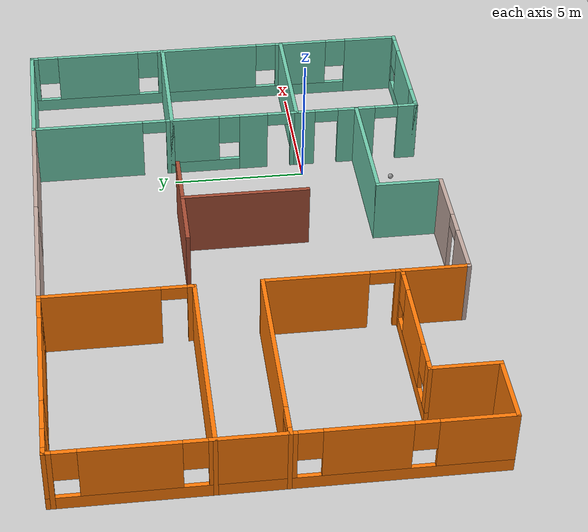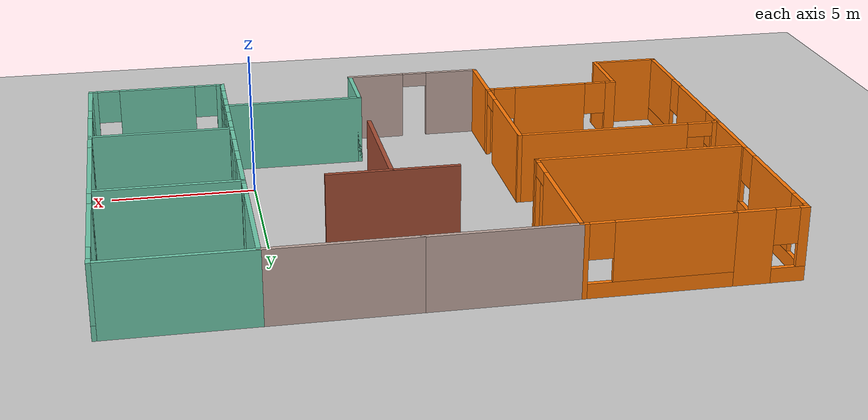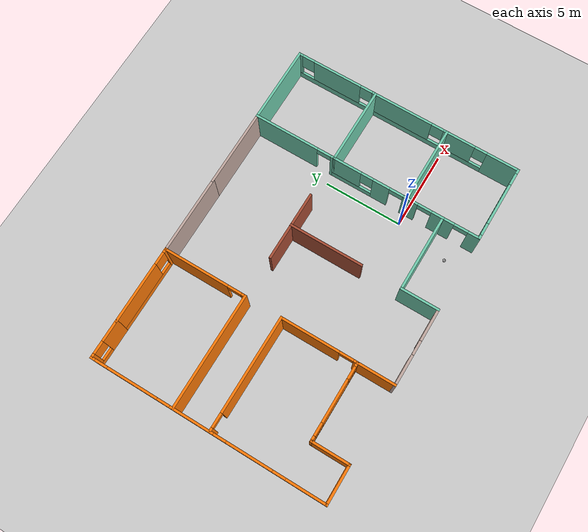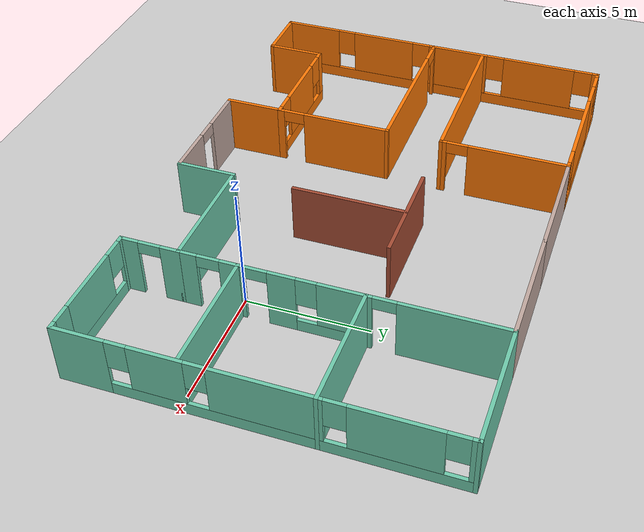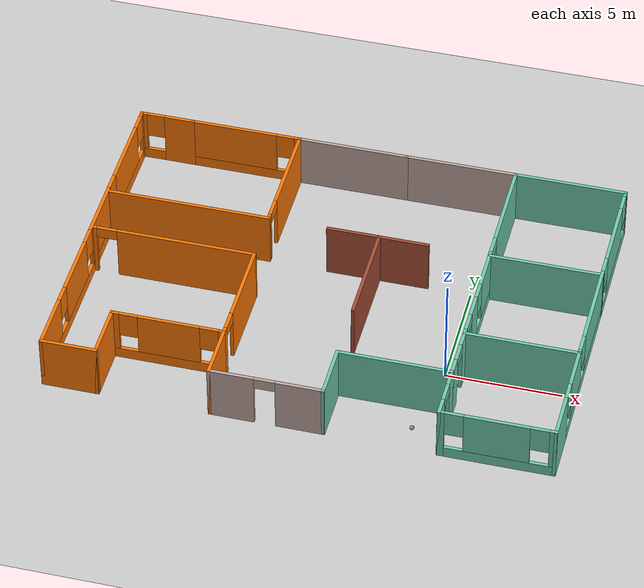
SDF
<sdf version="1.7">
 <world name="default">
  <model name="ground_plane">
   <static>1</static>
   <link name="link">
    <collision name="collision">
     <geometry><plane><normal>0 0 1</normal><size>100 100</size></plane></geometry>
     <surface>
      <contact><collide_bitmask>65535</collide_bitmask></contact>
      <friction><ode><mu>100</mu><mu2>50</mu2></ode></friction>
     </surface>
    </collision>
    <visual name="visual">
     <cast_shadows>0</cast_shadows>
     <geometry><plane><normal>0 0 1</normal><size>100 100</size></plane></geometry>
     <material>
      <script><uri>file://media/materials/scripts/gazebo.material</uri><name>Gazebo/Grey</name></script>
     </material>
    </visual>
   </link>
  </model>
  <model name="World_1">
   <pose>-5.29578 2.9031 0 0 -0 0</pose>
   <link name="Wall_10">
    <pose>6.025 -3.9 0 0 -0 1.5708</pose>
    <visual name="Wall_10_Visual_0">
     <pose>-0.849577 0 1.25 0 -0 0</pose>
     <geometry><box><size>0.800846 0.15 2.5</size></box></geometry>
     <material>
      <script><uri>file://media/materials/scripts/gazebo.material</uri><name>Gazebo/Grey</name></script>
      <ambient>0.435294 0.796078 0.67451 1</ambient>
     </material>
     <meta><layer>0</layer></meta>
    </visual>
    <collision name="Wall_10_Collision_0">
     <geometry><box><size>0.800846 0.15 2.5</size></box></geometry>
     <pose>-0.849577 0 1.25 0 -0 0</pose>
    </collision>
    <visual name="Wall_10_Visual_1">
     <pose>0.850423 0 1.25 0 -0 0</pose>
     <geometry><box><size>0.799154 0.15 2.5</size></box></geometry>
     <material>
      <script><uri>file://media/materials/scripts/gazebo.material</uri><name>Gazebo/Grey</name></script>
      <ambient>0.435294 0.796078 0.67451 1</ambient>
     </material>
     <meta><layer>0</layer></meta>
    </visual>
    <collision name="Wall_10_Collision_1">
     <geometry><box><size>0.799154 0.15 2.5</size></box></geometry>
     <pose>0.850423 0 1.25 0 -0 0</pose>
    </collision>
    <visual name="Wall_10_Visual_2">
     <pose>0.000846 0 2.25 0 -0 0</pose>
     <geometry><box><size>0.9 0.15 0.5</size></box></geometry>
     <material>
      <script><uri>file://media/materials/scripts/gazebo.material</uri><name>Gazebo/Grey</name></script>
      <ambient>0.435294 0.796078 0.67451 1</ambient>
     </material>
     <meta><layer>0</layer></meta>
    </visual>
    <collision name="Wall_10_Collision_2">
     <geometry><box><size>0.9 0.15 0.5</size></box></geometry>
     <pose>0.000846 0 2.25 0 -0 0</pose>
    </collision>
   </link>
   <link name="Wall_11">
    <collision name="Wall_11_Collision">
     <geometry><box><size>5 0.15 2.5</size></box></geometry>
     <pose>0 0 1.25 0 -0 0</pose>
    </collision>
    <visual name="Wall_11_Visual">
     <pose>0 0 1.25 0 -0 0</pose>
     <geometry><box><size>5 0.15 2.5</size></box></geometry>
     <material>
      <script><uri>file://media/materials/scripts/gazebo.material</uri><name>Gazebo/Grey</name></script>
      <ambient>0.435294 0.796078 0.67451 1</ambient>
     </material>
     <meta><layer>0</layer></meta>
    </visual>
    <pose>8.45 -2.725 0 0 -0 0</pose>
   </link>
   <link name="Wall_13">
    <pose>6.025 -0.3 0 0 -0 1.5708</pose>
    <visual name="Wall_13_Visual_0">
     <pose>-2.34458 0 1.25 0 -0 0</pose>
     <geometry><box><size>0.310846 0.15 2.5</size></box></geometry>
     <material>
      <script><uri>file://media/materials/scripts/gazebo.material</uri><name>Gazebo/Grey</name></script>
      <ambient>0.435294 0.796078 0.67451 1</ambient>
     </material>
     <meta><layer>0</layer></meta>
    </visual>
    <collision name="Wall_13_Collision_0">
     <geometry><box><size>0.310846 0.15 2.5</size></box></geometry>
     <pose>-2.34458 0 1.25 0 -0 0</pose>
    </collision>
    <visual name="Wall_13_Visual_1">
     <pose>-0.744154 0 1.25 0 -0 0</pose>
     <geometry><box><size>1.09 0.15 2.5</size></box></geometry>
     <material>
      <script><uri>file://media/materials/scripts/gazebo.material</uri><name>Gazebo/Grey</name></script>
      <ambient>0.435294 0.796078 0.67451 1</ambient>
     </material>
     <meta><layer>0</layer></meta>
    </visual>
    <collision name="Wall_13_Collision_1">
     <geometry><box><size>1.09 0.15 2.5</size></box></geometry>
     <pose>-0.744154 0 1.25 0 -0 0</pose>
    </collision>
    <visual name="Wall_13_Visual_2">
     <pose>1.15042 0 0.25 0 -0 0</pose>
     <geometry><box><size>2.69915 0.15 0.5</size></box></geometry>
     <material>
      <script><uri>file://media/materials/scripts/gazebo.material</uri><name>Gazebo/Grey</name></script>
      <ambient>0.435294 0.796078 0.67451 1</ambient>
     </material>
     <meta><layer>0</layer></meta>
    </visual>
    <collision name="Wall_13_Collision_2">
     <geometry><box><size>2.69915 0.15 0.5</size></box></geometry>
     <pose>1.15042 0 0.25 0 -0 0</pose>
    </collision>
    <visual name="Wall_13_Visual_3">
     <pose>1.55042 0 1.5 0 -0 0</pose>
     <geometry><box><size>1.89915 0.15 2</size></box></geometry>
     <material>
      <script><uri>file://media/materials/scripts/gazebo.material</uri><name>Gazebo/Grey</name></script>
      <ambient>0.435294 0.796078 0.67451 1</ambient>
     </material>
     <meta><layer>0</layer></meta>
    </visual>
    <collision name="Wall_13_Collision_3">
     <geometry><box><size>1.89915 0.15 2</size></box></geometry>
     <pose>1.55042 0 1.5 0 -0 0</pose>
    </collision>
    <visual name="Wall_13_Visual_4">
     <pose>0.200846 0 1.9 0 -0 0</pose>
     <geometry><box><size>0.8 0.15 1.2</size></box></geometry>
     <material>
      <script><uri>file://media/materials/scripts/gazebo.material</uri><name>Gazebo/Grey</name></script>
      <ambient>0.435294 0.796078 0.67451 1</ambient>
     </material>
     <meta><layer>0</layer></meta>
    </visual>
    <collision name="Wall_13_Collision_4">
     <geometry><box><size>0.8 0.15 1.2</size></box></geometry>
     <pose>0.200846 0 1.9 0 -0 0</pose>
    </collision>
    <visual name="Wall_13_Visual_5">
     <pose>-1.73915 0 2.25 0 -0 0</pose>
     <geometry><box><size>0.9 0.15 0.5</size></box></geometry>
     <material>
      <script><uri>file://media/materials/scripts/gazebo.material</uri><name>Gazebo/Grey</name></script>
      <ambient>0.435294 0.796078 0.67451 1</ambient>
     </material>
     <meta><layer>0</layer></meta>
    </visual>
    <collision name="Wall_13_Collision_5">
     <geometry><box><size>0.9 0.15 0.5</size></box></geometry>
     <pose>-1.73915 0 2.25 0 -0 0</pose>
    </collision>
   </link>
   <link name="Wall_14">
    <collision name="Wall_14_Collision">
     <geometry><box><size>5 0.15 2.5</size></box></geometry>
     <pose>0 0 1.25 0 -0 0</pose>
    </collision>
    <visual name="Wall_14_Visual">
     <pose>0 0 1.25 0 -0 0</pose>
     <geometry><box><size>5 0.15 2.5</size></box></geometry>
     <material>
      <script><uri>file://media/materials/scripts/gazebo.material</uri><name>Gazebo/Grey</name></script>
      <ambient>0.435294 0.796078 0.67451 1</ambient>
     </material>
     <meta><layer>0</layer></meta>
    </visual>
    <pose>8.45 2.125 0 0 -0 0</pose>
   </link>
   <link name="Wall_16">
    <collision name="Wall_16_Collision">
     <geometry><box><size>5 0.15 2.5</size></box></geometry>
     <pose>0 0 1.25 0 -0 0</pose>
    </collision>
    <visual name="Wall_16_Visual">
     <pose>0 0 1.25 0 -0 0</pose>
     <geometry><box><size>5 0.15 2.5</size></box></geometry>
     <material>
      <script><uri>file://media/materials/scripts/gazebo.material</uri><name>Gazebo/Grey</name></script>
      <ambient>0.435294 0.796078 0.67451 1</ambient>
     </material>
     <meta><layer>0</layer></meta>
    </visual>
    <pose>8.45 7.425 0 0 -0 3.14159</pose>
   </link>
   <link name="Wall_17">
    <pose>6.025 4.775 0 0 0 -1.5708</pose>
    <visual name="Wall_17_Visual_0">
     <pose>-0.605423 0 1.25 0 -0 0</pose>
     <geometry><box><size>4.23915 0.15 2.5</size></box></geometry>
     <material>
      <script><uri>file://media/materials/scripts/gazebo.material</uri><name>Gazebo/Grey</name></script>
      <ambient>0.435294 0.796078 0.67451 1</ambient>
     </material>
     <meta><layer>0</layer></meta>
    </visual>
    <collision name="Wall_17_Collision_0">
     <geometry><box><size>4.23915 0.15 2.5</size></box></geometry>
     <pose>-0.605423 0 1.25 0 -0 0</pose>
    </collision>
    <visual name="Wall_17_Visual_1">
     <pose>2.56958 0 1.25 0 -0 0</pose>
     <geometry><box><size>0.310846 0.15 2.5</size></box></geometry>
     <material>
      <script><uri>file://media/materials/scripts/gazebo.material</uri><name>Gazebo/Grey</name></script>
      <ambient>0.435294 0.796078 0.67451 1</ambient>
     </material>
     <meta><layer>0</layer></meta>
    </visual>
    <collision name="Wall_17_Collision_1">
     <geometry><box><size>0.310846 0.15 2.5</size></box></geometry>
     <pose>2.56958 0 1.25 0 -0 0</pose>
    </collision>
    <visual name="Wall_17_Visual_2">
     <pose>1.96415 0 2.25 0 -0 0</pose>
     <geometry><box><size>0.9 0.15 0.5</size></box></geometry>
     <material>
      <script><uri>file://media/materials/scripts/gazebo.material</uri><name>Gazebo/Grey</name></script>
      <ambient>0.435294 0.796078 0.67451 1</ambient>
     </material>
     <meta><layer>0</layer></meta>
    </visual>
    <collision name="Wall_17_Collision_2">
     <geometry><box><size>0.9 0.15 0.5</size></box></geometry>
     <pose>1.96415 0 2.25 0 -0 0</pose>
    </collision>
   </link>
   <link name="Wall_19">
    <collision name="Wall_19_Collision">
     <geometry><box><size>2.5 0.15 2.5</size></box></geometry>
     <pose>0 0 1.25 0 -0 0</pose>
    </collision>
    <visual name="Wall_19_Visual">
     <pose>0 0 1.25 0 -0 0</pose>
     <geometry><box><size>2.5 0.15 2.5</size></box></geometry>
     <material>
      <script><uri>file://media/materials/scripts/gazebo.material</uri><name>Gazebo/Grey</name></script>
      <ambient>0.996078 0.47451 0.0196078 1</ambient>
     </material>
     <meta><layer>0</layer></meta>
    </visual>
    <pose>-3.675 -6.25 0 0 -0 1.5708</pose>
   </link>
   <link name="Wall_2">
    <pose>-1.25 -7.425 0 0 -0 0</pose>
    <visual name="Wall_2_Visual_0">
     <pose>-1.5042 0 1.25 0 -0 0</pose>
     <geometry><box><size>1.99161 0.15 2.5</size></box></geometry>
     <material>
      <script><uri>file://media/materials/scripts/gazebo.material</uri><name>Gazebo/Grey</name></script>
      <ambient>0.760784 0.662745 0.627451 1</ambient>
     </material>
     <meta><layer>0</layer></meta>
    </visual>
    <collision name="Wall_2_Collision_0">
     <geometry><box><size>1.99161 0.15 2.5</size></box></geometry>
     <pose>-1.5042 0 1.25 0 -0 0</pose>
    </collision>
    <visual name="Wall_2_Visual_1">
     <pose>1.4458 0 1.25 0 -0 0</pose>
     <geometry><box><size>2.10839 0.15 2.5</size></box></geometry>
     <material>
      <script><uri>file://media/materials/scripts/gazebo.material</uri><name>Gazebo/Grey</name></script>
      <ambient>0.760784 0.662745 0.627451 1</ambient>
     </material>
     <meta><layer>0</layer></meta>
    </visual>
    <collision name="Wall_2_Collision_1">
     <geometry><box><size>2.10839 0.15 2.5</size></box></geometry>
     <pose>1.4458 0 1.25 0 -0 0</pose>
    </collision>
    <visual name="Wall_2_Visual_2">
     <pose>-0.058393 0 2.25 0 -0 0</pose>
     <geometry><box><size>0.9 0.15 0.5</size></box></geometry>
     <material>
      <script><uri>file://media/materials/scripts/gazebo.material</uri><name>Gazebo/Grey</name></script>
      <ambient>0.760784 0.662745 0.627451 1</ambient>
     </material>
     <meta><layer>0</layer></meta>
    </visual>
    <collision name="Wall_2_Collision_2">
     <geometry><box><size>0.9 0.15 0.5</size></box></geometry>
     <pose>-0.058393 0 2.25 0 -0 0</pose>
    </collision>
   </link>
   <link name="Wall_21">
    <pose>-6.1 -5.075 0 0 -0 3.14159</pose>
    <visual name="Wall_21_Visual_0">
     <pose>-2.34529 0 1.25 0 -0 0</pose>
     <geometry><box><size>0.309417 0.15 2.5</size></box></geometry>
     <material>
      <script><uri>file://media/materials/scripts/gazebo.material</uri><name>Gazebo/Grey</name></script>
      <ambient>0.996078 0.47451 0.0196078 1</ambient>
     </material>
     <meta><layer>0</layer></meta>
    </visual>
    <collision name="Wall_21_Collision_0">
     <geometry><box><size>0.309417 0.15 2.5</size></box></geometry>
     <pose>-2.34529 0 1.25 0 -0 0</pose>
    </collision>
    <visual name="Wall_21_Visual_1">
     <pose>0.154709 0 0.25 0 -0 0</pose>
     <geometry><box><size>4.69058 0.15 0.5</size></box></geometry>
     <material>
      <script><uri>file://media/materials/scripts/gazebo.material</uri><name>Gazebo/Grey</name></script>
      <ambient>0.996078 0.47451 0.0196078 1</ambient>
     </material>
     <meta><layer>0</layer></meta>
    </visual>
    <collision name="Wall_21_Collision_1">
     <geometry><box><size>4.69058 0.15 0.5</size></box></geometry>
     <pose>0.154709 0 0.25 0 -0 0</pose>
    </collision>
    <visual name="Wall_21_Visual_2">
     <pose>-0.040702 0 1.5 0 -0 0</pose>
     <geometry><box><size>2.69976 0.15 2</size></box></geometry>
     <material>
      <script><uri>file://media/materials/scripts/gazebo.material</uri><name>Gazebo/Grey</name></script>
      <ambient>0.996078 0.47451 0.0196078 1</ambient>
     </material>
     <meta><layer>0</layer></meta>
    </visual>
    <collision name="Wall_21_Collision_2">
     <geometry><box><size>2.69976 0.15 2</size></box></geometry>
     <pose>-0.040702 0 1.5 0 -0 0</pose>
    </collision>
    <visual name="Wall_21_Visual_3">
     <pose>2.30459 0 1.5 0 -0 0</pose>
     <geometry><box><size>0.390821 0.15 2</size></box></geometry>
     <material>
      <script><uri>file://media/materials/scripts/gazebo.material</uri><name>Gazebo/Grey</name></script>
      <ambient>0.996078 0.47451 0.0196078 1</ambient>
     </material>
     <meta><layer>0</layer></meta>
    </visual>
    <collision name="Wall_21_Collision_3">
     <geometry><box><size>0.390821 0.15 2</size></box></geometry>
     <pose>2.30459 0 1.5 0 -0 0</pose>
    </collision>
    <visual name="Wall_21_Visual_4">
     <pose>-1.79058 0 1.9 0 -0 0</pose>
     <geometry><box><size>0.8 0.15 1.2</size></box></geometry>
     <material>
      <script><uri>file://media/materials/scripts/gazebo.material</uri><name>Gazebo/Grey</name></script>
      <ambient>0.996078 0.47451 0.0196078 1</ambient>
     </material>
     <meta><layer>0</layer></meta>
    </visual>
    <collision name="Wall_21_Collision_4">
     <geometry><box><size>0.8 0.15 1.2</size></box></geometry>
     <pose>-1.79058 0 1.9 0 -0 0</pose>
    </collision>
    <visual name="Wall_21_Visual_5">
     <pose>1.70918 0 1.9 0 -0 0</pose>
     <geometry><box><size>0.8 0.15 1.2</size></box></geometry>
     <material>
      <script><uri>file://media/materials/scripts/gazebo.material</uri><name>Gazebo/Grey</name></script>
      <ambient>0.996078 0.47451 0.0196078 1</ambient>
     </material>
     <meta><layer>0</layer></meta>
    </visual>
    <collision name="Wall_21_Collision_5">
     <geometry><box><size>0.8 0.15 1.2</size></box></geometry>
     <pose>1.70918 0 1.9 0 -0 0</pose>
    </collision>
   </link>
   <link name="Wall_3">
    <collision name="Wall_3_Collision">
     <geometry><box><size>2.5 0.15 2.5</size></box></geometry>
     <pose>0 0 1.25 0 -0 0</pose>
    </collision>
    <visual name="Wall_3_Visual">
     <pose>0 0 1.25 0 -0 0</pose>
     <geometry><box><size>2.5 0.15 2.5</size></box></geometry>
     <material>
      <script><uri>file://media/materials/scripts/gazebo.material</uri><name>Gazebo/Grey</name></script>
      <ambient>0.435294 0.796078 0.67451 1</ambient>
     </material>
     <meta><layer>0</layer></meta>
    </visual>
    <pose>1.175 -6.25 0 0 -0 1.5708</pose>
   </link>
   <link name="Wall_34">
    <collision name="Wall_34_Collision">
     <geometry><box><size>2.5 0.15 2.5</size></box></geometry>
     <pose>0 0 1.25 0 -0 0</pose>
    </collision>
    <visual name="Wall_34_Visual">
     <pose>0 0 1.25 0 -0 0</pose>
     <geometry><box><size>2.5 0.15 2.5</size></box></geometry>
     <material>
      <script><uri>file://media/materials/scripts/gazebo.material</uri><name>Gazebo/Grey</name></script>
      <ambient>0.996078 0.47451 0.0196078 1</ambient>
     </material>
     <meta><layer>0</layer></meta>
    </visual>
    <pose>-8.525 -6.25 0 0 0 -1.5708</pose>
   </link>
   <link name="Wall_38">
    <collision name="Wall_38_Collision">
     <geometry><box><size>5 0.15 2.5</size></box></geometry>
     <pose>0 0 1.25 0 -0 0</pose>
    </collision>
    <visual name="Wall_38_Visual">
     <pose>0 0 1.25 0 -0 0</pose>
     <geometry><box><size>5 0.15 2.5</size></box></geometry>
     <material>
      <script><uri>file://media/materials/scripts/gazebo.material</uri><name>Gazebo/Grey</name></script>
      <ambient>0.760784 0.662745 0.627451 1</ambient>
     </material>
     <meta><layer>0</layer></meta>
    </visual>
    <pose>3.6 7.425 0 0 -0 3.14159</pose>
   </link>
   <link name="Wall_39">
    <collision name="Wall_39_Collision">
     <geometry><box><size>5 0.15 2.5</size></box></geometry>
     <pose>0 0 1.25 0 -0 0</pose>
    </collision>
    <visual name="Wall_39_Visual">
     <pose>0 0 1.25 0 -0 0</pose>
     <geometry><box><size>5 0.15 2.5</size></box></geometry>
     <material>
      <script><uri>file://media/materials/scripts/gazebo.material</uri><name>Gazebo/Grey</name></script>
      <ambient>0.760784 0.662745 0.627451 1</ambient>
     </material>
     <meta><layer>0</layer></meta>
    </visual>
    <pose>-1.25 7.425 0 0 -0 3.14159</pose>
   </link>
   <link name="Wall_4">
    <collision name="Wall_4_Collision">
     <geometry><box><size>5 0.15 2.5</size></box></geometry>
     <pose>0 0 1.25 0 -0 0</pose>
    </collision>
    <visual name="Wall_4_Visual">
     <pose>0 0 1.25 0 -0 0</pose>
     <geometry><box><size>5 0.15 2.5</size></box></geometry>
     <material>
      <script><uri>file://media/materials/scripts/gazebo.material</uri><name>Gazebo/Grey</name></script>
      <ambient>0.435294 0.796078 0.67451 1</ambient>
     </material>
     <meta><layer>0</layer></meta>
    </visual>
    <pose>3.6 -5.075 0 0 -0 0</pose>
   </link>
   <link name="Wall_40">
    <pose>-6.1 7.425 0 0 -0 3.14159</pose>
    <visual name="Wall_40_Visual_0">
     <pose>-2.3458 0 1.25 0 -0 0</pose>
     <geometry><box><size>0.308393 0.15 2.5</size></box></geometry>
     <material>
      <script><uri>file://media/materials/scripts/gazebo.material</uri><name>Gazebo/Grey</name></script>
      <ambient>0.996078 0.47451 0.0196078 1</ambient>
     </material>
     <meta><layer>0</layer></meta>
    </visual>
    <collision name="Wall_40_Collision_0">
     <geometry><box><size>0.308393 0.15 2.5</size></box></geometry>
     <pose>-2.3458 0 1.25 0 -0 0</pose>
    </collision>
    <visual name="Wall_40_Visual_1">
     <pose>0.154197 0 0.25 0 -0 0</pose>
     <geometry><box><size>4.69161 0.15 0.5</size></box></geometry>
     <material>
      <script><uri>file://media/materials/scripts/gazebo.material</uri><name>Gazebo/Grey</name></script>
      <ambient>0.996078 0.47451 0.0196078 1</ambient>
     </material>
     <meta><layer>0</layer></meta>
    </visual>
    <collision name="Wall_40_Collision_1">
     <geometry><box><size>4.69161 0.15 0.5</size></box></geometry>
     <pose>0.154197 0 0.25 0 -0 0</pose>
    </collision>
    <visual name="Wall_40_Visual_2">
     <pose>0.554197 0 1.5 0 -0 0</pose>
     <geometry><box><size>3.89161 0.15 2</size></box></geometry>
     <material>
      <script><uri>file://media/materials/scripts/gazebo.material</uri><name>Gazebo/Grey</name></script>
      <ambient>0.996078 0.47451 0.0196078 1</ambient>
     </material>
     <meta><layer>0</layer></meta>
    </visual>
    <collision name="Wall_40_Collision_2">
     <geometry><box><size>3.89161 0.15 2</size></box></geometry>
     <pose>0.554197 0 1.5 0 -0 0</pose>
    </collision>
    <visual name="Wall_40_Visual_3">
     <pose>-1.79161 0 1.9 0 -0 0</pose>
     <geometry><box><size>0.8 0.15 1.2</size></box></geometry>
     <material>
      <script><uri>file://media/materials/scripts/gazebo.material</uri><name>Gazebo/Grey</name></script>
      <ambient>0.996078 0.47451 0.0196078 1</ambient>
     </material>
     <meta><layer>0</layer></meta>
    </visual>
    <collision name="Wall_40_Collision_3">
     <geometry><box><size>0.8 0.15 1.2</size></box></geometry>
     <pose>-1.79161 0 1.9 0 -0 0</pose>
    </collision>
   </link>
   <link name="Wall_43">
    <collision name="Wall_43_Collision">
     <geometry><box><size>2.5 0.15 2.5</size></box></geometry>
     <pose>0 0 1.25 0 -0 0</pose>
    </collision>
    <visual name="Wall_43_Visual">
     <pose>0 0 1.25 0 -0 0</pose>
     <geometry><box><size>2.5 0.15 2.5</size></box></geometry>
     <material>
      <script><uri>file://media/materials/scripts/gazebo.material</uri><name>Gazebo/Grey</name></script>
      <ambient>0.996078 0.47451 0.0196078 1</ambient>
     </material>
     <meta><layer>0</layer></meta>
    </visual>
    <pose>-9.7 -7.425 0 0 -0 3.14159</pose>
   </link>
   <link name="Wall_45">
    <pose>-9.7 7.425 0 0 -0 3.14159</pose>
    <visual name="Wall_45_Visual_0">
     <pose>-0.560804 0 1.25 0 -0 0</pose>
     <geometry><box><size>1.37839 0.15 2.5</size></box></geometry>
     <material>
      <script><uri>file://media/materials/scripts/gazebo.material</uri><name>Gazebo/Grey</name></script>
      <ambient>0.996078 0.47451 0.0196078 1</ambient>
     </material>
     <meta><layer>0</layer></meta>
    </visual>
    <collision name="Wall_45_Collision_0">
     <geometry><box><size>1.37839 0.15 2.5</size></box></geometry>
     <pose>-0.560804 0 1.25 0 -0 0</pose>
    </collision>
    <visual name="Wall_45_Visual_1">
     <pose>0.689196 0 0.25 0 -0 0</pose>
     <geometry><box><size>1.12161 0.15 0.5</size></box></geometry>
     <material>
      <script><uri>file://media/materials/scripts/gazebo.material</uri><name>Gazebo/Grey</name></script>
      <ambient>0.996078 0.47451 0.0196078 1</ambient>
     </material>
     <meta><layer>0</layer></meta>
    </visual>
    <collision name="Wall_45_Collision_1">
     <geometry><box><size>1.12161 0.15 0.5</size></box></geometry>
     <pose>0.689196 0 0.25 0 -0 0</pose>
    </collision>
    <visual name="Wall_45_Visual_2">
     <pose>1.0892 0 1.5 0 -0 0</pose>
     <geometry><box><size>0.321607 0.15 2</size></box></geometry>
     <material>
      <script><uri>file://media/materials/scripts/gazebo.material</uri><name>Gazebo/Grey</name></script>
      <ambient>0.996078 0.47451 0.0196078 1</ambient>
     </material>
     <meta><layer>0</layer></meta>
    </visual>
    <collision name="Wall_45_Collision_2">
     <geometry><box><size>0.321607 0.15 2</size></box></geometry>
     <pose>1.0892 0 1.5 0 -0 0</pose>
    </collision>
    <visual name="Wall_45_Visual_3">
     <pose>0.528393 0 1.9 0 -0 0</pose>
     <geometry><box><size>0.8 0.15 1.2</size></box></geometry>
     <material>
      <script><uri>file://media/materials/scripts/gazebo.material</uri><name>Gazebo/Grey</name></script>
      <ambient>0.996078 0.47451 0.0196078 1</ambient>
     </material>
     <meta><layer>0</layer></meta>
    </visual>
    <collision name="Wall_45_Collision_3">
     <geometry><box><size>0.8 0.15 1.2</size></box></geometry>
     <pose>0.528393 0 1.9 0 -0 0</pose>
    </collision>
   </link>
   <link name="Wall_46">
    <pose>-10.875 0 0 0 0 -1.5708</pose>
    <visual name="Wall_46_Visual_0">
     <pose>-7.34042 0 1.25 0 -0 0</pose>
     <geometry><box><size>0.319154 0.15 2.5</size></box></geometry>
     <material>
      <script><uri>file://media/materials/scripts/gazebo.material</uri><name>Gazebo/Grey</name></script>
      <ambient>0.996078 0.47451 0.0196078 1</ambient>
     </material>
     <meta><layer>0</layer></meta>
    </visual>
    <collision name="Wall_46_Collision_0">
     <geometry><box><size>0.319154 0.15 2.5</size></box></geometry>
     <pose>-7.34042 0 1.25 0 -0 0</pose>
    </collision>
    <visual name="Wall_46_Visual_1">
     <pose>0.159577 0 0.25 0 -0 0</pose>
     <geometry><box><size>14.6808 0.15 0.5</size></box></geometry>
     <material>
      <script><uri>file://media/materials/scripts/gazebo.material</uri><name>Gazebo/Grey</name></script>
      <ambient>0.996078 0.47451 0.0196078 1</ambient>
     </material>
     <meta><layer>0</layer></meta>
    </visual>
    <collision name="Wall_46_Collision_1">
     <geometry><box><size>14.6808 0.15 0.5</size></box></geometry>
     <pose>0.159577 0 0.25 0 -0 0</pose>
    </collision>
    <visual name="Wall_46_Visual_2">
     <pose>-4.75585 0 1.5 0 -0 0</pose>
     <geometry><box><size>3.25 0.15 2</size></box></geometry>
     <material>
      <script><uri>file://media/materials/scripts/gazebo.material</uri><name>Gazebo/Grey</name></script>
      <ambient>0.996078 0.47451 0.0196078 1</ambient>
     </material>
     <meta><layer>0</layer></meta>
    </visual>
    <collision name="Wall_46_Collision_2">
     <geometry><box><size>3.25 0.15 2</size></box></geometry>
     <pose>-4.75585 0 1.5 0 -0 0</pose>
    </collision>
    <visual name="Wall_46_Visual_3">
     <pose>-0.940846 0 1.5 0 -0 0</pose>
     <geometry><box><size>2.78 0.15 2</size></box></geometry>
     <material>
      <script><uri>file://media/materials/scripts/gazebo.material</uri><name>Gazebo/Grey</name></script>
      <ambient>0.996078 0.47451 0.0196078 1</ambient>
     </material>
     <meta><layer>0</layer></meta>
    </visual>
    <collision name="Wall_46_Collision_3">
     <geometry><box><size>2.78 0.15 2</size></box></geometry>
     <pose>-0.940846 0 1.5 0 -0 0</pose>
    </collision>
    <visual name="Wall_46_Visual_4">
     <pose>2.68915 0 1.5 0 -0 0</pose>
     <geometry><box><size>2.88 0.15 2</size></box></geometry>
     <material>
      <script><uri>file://media/materials/scripts/gazebo.material</uri><name>Gazebo/Grey</name></script>
      <ambient>0.996078 0.47451 0.0196078 1</ambient>
     </material>
     <meta><layer>0</layer></meta>
    </visual>
    <collision name="Wall_46_Collision_4">
     <geometry><box><size>2.88 0.15 2</size></box></geometry>
     <pose>2.68915 0 1.5 0 -0 0</pose>
    </collision>
    <visual name="Wall_46_Visual_5">
     <pose>6.21458 0 1.5 0 -0 0</pose>
     <geometry><box><size>2.57085 0.15 2</size></box></geometry>
     <material>
      <script><uri>file://media/materials/scripts/gazebo.material</uri><name>Gazebo/Grey</name></script>
      <ambient>0.996078 0.47451 0.0196078 1</ambient>
     </material>
     <meta><layer>0</layer></meta>
    </visual>
    <collision name="Wall_46_Collision_5">
     <geometry><box><size>2.57085 0.15 2</size></box></geometry>
     <pose>6.21458 0 1.5 0 -0 0</pose>
    </collision>
    <visual name="Wall_46_Visual_6">
     <pose>-6.78085 0 1.9 0 -0 0</pose>
     <geometry><box><size>0.8 0.15 1.2</size></box></geometry>
     <material>
      <script><uri>file://media/materials/scripts/gazebo.material</uri><name>Gazebo/Grey</name></script>
      <ambient>0.996078 0.47451 0.0196078 1</ambient>
     </material>
     <meta><layer>0</layer></meta>
    </visual>
    <collision name="Wall_46_Collision_6">
     <geometry><box><size>0.8 0.15 1.2</size></box></geometry>
     <pose>-6.78085 0 1.9 0 -0 0</pose>
    </collision>
    <visual name="Wall_46_Visual_7">
     <pose>-2.73085 0 1.9 0 -0 0</pose>
     <geometry><box><size>0.8 0.15 1.2</size></box></geometry>
     <material>
      <script><uri>file://media/materials/scripts/gazebo.material</uri><name>Gazebo/Grey</name></script>
      <ambient>0.996078 0.47451 0.0196078 1</ambient>
     </material>
     <meta><layer>0</layer></meta>
    </visual>
    <collision name="Wall_46_Collision_7">
     <geometry><box><size>0.8 0.15 1.2</size></box></geometry>
     <pose>-2.73085 0 1.9 0 -0 0</pose>
    </collision>
    <visual name="Wall_46_Visual_8">
     <pose>0.849154 0 1.9 0 -0 0</pose>
     <geometry><box><size>0.8 0.15 1.2</size></box></geometry>
     <material>
      <script><uri>file://media/materials/scripts/gazebo.material</uri><name>Gazebo/Grey</name></script>
      <ambient>0.996078 0.47451 0.0196078 1</ambient>
     </material>
     <meta><layer>0</layer></meta>
    </visual>
    <collision name="Wall_46_Collision_8">
     <geometry><box><size>0.8 0.15 1.2</size></box></geometry>
     <pose>0.849154 0 1.9 0 -0 0</pose>
    </collision>
    <visual name="Wall_46_Visual_9">
     <pose>4.52915 0 1.9 0 -0 0</pose>
     <geometry><box><size>0.8 0.15 1.2</size></box></geometry>
     <material>
      <script><uri>file://media/materials/scripts/gazebo.material</uri><name>Gazebo/Grey</name></script>
      <ambient>0.996078 0.47451 0.0196078 1</ambient>
     </material>
     <meta><layer>0</layer></meta>
    </visual>
    <collision name="Wall_46_Collision_9">
     <geometry><box><size>0.8 0.15 1.2</size></box></geometry>
     <pose>4.52915 0 1.9 0 -0 0</pose>
    </collision>
   </link>
   <link name="Wall_48">
    <pose>-3.675 -2.65 0 0 -0 1.5708</pose>
    <visual name="Wall_48_Visual_0">
     <pose>-2.34458 0 1.25 0 -0 0</pose>
     <geometry><box><size>0.310846 0.15 2.5</size></box></geometry>
     <material>
      <script><uri>file://media/materials/scripts/gazebo.material</uri><name>Gazebo/Grey</name></script>
      <ambient>0.996078 0.47451 0.0196078 1</ambient>
     </material>
     <meta><layer>0</layer></meta>
    </visual>
    <collision name="Wall_48_Collision_0">
     <geometry><box><size>0.310846 0.15 2.5</size></box></geometry>
     <pose>-2.34458 0 1.25 0 -0 0</pose>
    </collision>
    <visual name="Wall_48_Visual_1">
     <pose>0.605423 0 1.25 0 -0 0</pose>
     <geometry><box><size>3.78915 0.15 2.5</size></box></geometry>
     <material>
      <script><uri>file://media/materials/scripts/gazebo.material</uri><name>Gazebo/Grey</name></script>
      <ambient>0.996078 0.47451 0.0196078 1</ambient>
     </material>
     <meta><layer>0</layer></meta>
    </visual>
    <collision name="Wall_48_Collision_1">
     <geometry><box><size>3.78915 0.15 2.5</size></box></geometry>
     <pose>0.605423 0 1.25 0 -0 0</pose>
    </collision>
    <visual name="Wall_48_Visual_2">
     <pose>-1.73915 0 2.25 0 -0 0</pose>
     <geometry><box><size>0.9 0.15 0.5</size></box></geometry>
     <material>
      <script><uri>file://media/materials/scripts/gazebo.material</uri><name>Gazebo/Grey</name></script>
      <ambient>0.996078 0.47451 0.0196078 1</ambient>
     </material>
     <meta><layer>0</layer></meta>
    </visual>
    <collision name="Wall_48_Collision_2">
     <geometry><box><size>0.9 0.15 0.5</size></box></geometry>
     <pose>-1.73915 0 2.25 0 -0 0</pose>
    </collision>
   </link>
   <link name="Wall_5">
    <pose>6.025 -6.25 0 0 0 -1.5708</pose>
    <visual name="Wall_5_Visual_0">
     <pose>-0.845423 0 1.25 0 -0 0</pose>
     <geometry><box><size>0.809154 0.15 2.5</size></box></geometry>
     <material>
      <script><uri>file://media/materials/scripts/gazebo.material</uri><name>Gazebo/Grey</name></script>
      <ambient>0.435294 0.796078 0.67451 1</ambient>
     </material>
     <meta><layer>0</layer></meta>
    </visual>
    <collision name="Wall_5_Collision_0">
     <geometry><box><size>0.809154 0.15 2.5</size></box></geometry>
     <pose>-0.845423 0 1.25 0 -0 0</pose>
    </collision>
    <visual name="Wall_5_Visual_1">
     <pose>0.854577 0 1.25 0 -0 0</pose>
     <geometry><box><size>0.790846 0.15 2.5</size></box></geometry>
     <material>
      <script><uri>file://media/materials/scripts/gazebo.material</uri><name>Gazebo/Grey</name></script>
      <ambient>0.435294 0.796078 0.67451 1</ambient>
     </material>
     <meta><layer>0</layer></meta>
    </visual>
    <collision name="Wall_5_Collision_1">
     <geometry><box><size>0.790846 0.15 2.5</size></box></geometry>
     <pose>0.854577 0 1.25 0 -0 0</pose>
    </collision>
    <visual name="Wall_5_Visual_2">
     <pose>0.009154 0 2.25 0 -0 0</pose>
     <geometry><box><size>0.9 0.15 0.5</size></box></geometry>
     <material>
      <script><uri>file://media/materials/scripts/gazebo.material</uri><name>Gazebo/Grey</name></script>
      <ambient>0.435294 0.796078 0.67451 1</ambient>
     </material>
     <meta><layer>0</layer></meta>
    </visual>
    <collision name="Wall_5_Collision_2">
     <geometry><box><size>0.9 0.15 0.5</size></box></geometry>
     <pose>0.009154 0 2.25 0 -0 0</pose>
    </collision>
   </link>
   <link name="Wall_50">
    <pose>-7.275 -0.225 0 0 -0 3.14159</pose>
    <visual name="Wall_50_Visual_0">
     <pose>-0.605803 0 1.25 0 -0 0</pose>
     <geometry><box><size>6.13839 0.15 2.5</size></box></geometry>
     <material>
      <script><uri>file://media/materials/scripts/gazebo.material</uri><name>Gazebo/Grey</name></script>
      <ambient>0.996078 0.47451 0.0196078 1</ambient>
     </material>
     <meta><layer>0</layer></meta>
    </visual>
    <collision name="Wall_50_Collision_0">
     <geometry><box><size>6.13839 0.15 2.5</size></box></geometry>
     <pose>-0.605803 0 1.25 0 -0 0</pose>
    </collision>
    <visual name="Wall_50_Visual_1">
     <pose>3.5192 0 1.25 0 -0 0</pose>
     <geometry><box><size>0.311607 0.15 2.5</size></box></geometry>
     <material>
      <script><uri>file://media/materials/scripts/gazebo.material</uri><name>Gazebo/Grey</name></script>
      <ambient>0.996078 0.47451 0.0196078 1</ambient>
     </material>
     <meta><layer>0</layer></meta>
    </visual>
    <collision name="Wall_50_Collision_1">
     <geometry><box><size>0.311607 0.15 2.5</size></box></geometry>
     <pose>3.5192 0 1.25 0 -0 0</pose>
    </collision>
    <visual name="Wall_50_Visual_2">
     <pose>2.91339 0 2.25 0 -0 0</pose>
     <geometry><box><size>0.9 0.15 0.5</size></box></geometry>
     <material>
      <script><uri>file://media/materials/scripts/gazebo.material</uri><name>Gazebo/Grey</name></script>
      <ambient>0.996078 0.47451 0.0196078 1</ambient>
     </material>
     <meta><layer>0</layer></meta>
    </visual>
    <collision name="Wall_50_Collision_2">
     <geometry><box><size>0.9 0.15 0.5</size></box></geometry>
     <pose>2.91339 0 2.25 0 -0 0</pose>
    </collision>
   </link>
   <link name="Wall_53">
    <pose>-3.675 4.775 0 0 0 -1.5708</pose>
    <visual name="Wall_53_Visual_0">
     <pose>-0.610423 0 1.25 0 -0 0</pose>
     <geometry><box><size>4.22915 0.15 2.5</size></box></geometry>
     <material>
      <script><uri>file://media/materials/scripts/gazebo.material</uri><name>Gazebo/Grey</name></script>
      <ambient>0.996078 0.47451 0.0196078 1</ambient>
     </material>
     <meta><layer>0</layer></meta>
    </visual>
    <collision name="Wall_53_Collision_0">
     <geometry><box><size>4.22915 0.15 2.5</size></box></geometry>
     <pose>-0.610423 0 1.25 0 -0 0</pose>
    </collision>
    <visual name="Wall_53_Visual_1">
     <pose>2.56458 0 1.25 0 -0 0</pose>
     <geometry><box><size>0.320846 0.15 2.5</size></box></geometry>
     <material>
      <script><uri>file://media/materials/scripts/gazebo.material</uri><name>Gazebo/Grey</name></script>
      <ambient>0.996078 0.47451 0.0196078 1</ambient>
     </material>
     <meta><layer>0</layer></meta>
    </visual>
    <collision name="Wall_53_Collision_1">
     <geometry><box><size>0.320846 0.15 2.5</size></box></geometry>
     <pose>2.56458 0 1.25 0 -0 0</pose>
    </collision>
    <visual name="Wall_53_Visual_2">
     <pose>1.95415 0 2.25 0 -0 0</pose>
     <geometry><box><size>0.9 0.15 0.5</size></box></geometry>
     <material>
      <script><uri>file://media/materials/scripts/gazebo.material</uri><name>Gazebo/Grey</name></script>
      <ambient>0.996078 0.47451 0.0196078 1</ambient>
     </material>
     <meta><layer>0</layer></meta>
    </visual>
    <collision name="Wall_53_Collision_2">
     <geometry><box><size>0.9 0.15 0.5</size></box></geometry>
     <pose>1.95415 0 2.25 0 -0 0</pose>
    </collision>
   </link>
   <link name="Wall_55">
    <collision name="Wall_55_Collision">
     <geometry><box><size>7.35 0.15 2.5</size></box></geometry>
     <pose>0 0 1.25 0 -0 0</pose>
    </collision>
    <visual name="Wall_55_Visual">
     <pose>0 0 1.25 0 -0 0</pose>
     <geometry><box><size>7.35 0.15 2.5</size></box></geometry>
     <material>
      <script><uri>file://media/materials/scripts/gazebo.material</uri><name>Gazebo/Grey</name></script>
      <ambient>0.996078 0.47451 0.0196078 1</ambient>
     </material>
     <meta><layer>0</layer></meta>
    </visual>
    <pose>-7.275 2.125 0 0 -0 3.14159</pose>
   </link>
   <link name="Wall_57">
    <collision name="Wall_57_Collision">
     <geometry><box><size>4.5 0.15 2.5</size></box></geometry>
     <pose>0 0 1.25 0 -0 0</pose>
    </collision>
    <visual name="Wall_57_Visual">
     <pose>0 0 1.25 0 -0 0</pose>
     <geometry><box><size>4.5 0.15 2.5</size></box></geometry>
     <material>
      <script><uri>file://media/materials/scripts/gazebo.material</uri><name>Gazebo/Bricks</name></script>
      <ambient>1 1 1 1</ambient>
     </material>
     <meta><layer>0</layer></meta>
    </visual>
    <pose>1.15173 2.11728 0 0 -0 0</pose>
   </link>
   <link name="Wall_59">
    <collision name="Wall_59_Collision">
     <geometry><box><size>4.75 0.15 2.5</size></box></geometry>
     <pose>0 0 1.25 0 -0 0</pose>
    </collision>
    <visual name="Wall_59_Visual">
     <pose>0 0 1.25 0 -0 0</pose>
     <geometry><box><size>4.75 0.15 2.5</size></box></geometry>
     <material>
      <script><uri>file://media/materials/scripts/gazebo.material</uri><name>Gazebo/Bricks</name></script>
      <ambient>1 1 1 1</ambient>
     </material>
     <meta><layer>0</layer></meta>
    </visual>
    <pose>1.20673 -0.182724 0 0 0 -1.5708</pose>
   </link>
   <link name="Wall_6">
    <pose>8.45 -7.425 0 0 -0 0</pose>
    <visual name="Wall_6_Visual_0">
     <pose>-2.3492 0 1.25 0 -0 0</pose>
     <geometry><box><size>0.301607 0.15 2.5</size></box></geometry>
     <material>
      <script><uri>file://media/materials/scripts/gazebo.material</uri><name>Gazebo/Grey</name></script>
      <ambient>0.435294 0.796078 0.67451 1</ambient>
     </material>
     <meta><layer>0</layer></meta>
    </visual>
    <collision name="Wall_6_Collision_0">
     <geometry><box><size>0.301607 0.15 2.5</size></box></geometry>
     <pose>-2.3492 0 1.25 0 -0 0</pose>
    </collision>
    <visual name="Wall_6_Visual_1">
     <pose>0.150803 0 0.25 0 -0 0</pose>
     <geometry><box><size>4.69839 0.15 0.5</size></box></geometry>
     <material>
      <script><uri>file://media/materials/scripts/gazebo.material</uri><name>Gazebo/Grey</name></script>
      <ambient>0.435294 0.796078 0.67451 1</ambient>
     </material>
     <meta><layer>0</layer></meta>
    </visual>
    <collision name="Wall_6_Collision_1">
     <geometry><box><size>4.69839 0.15 0.5</size></box></geometry>
     <pose>0.150803 0 0.25 0 -0 0</pose>
    </collision>
    <visual name="Wall_6_Visual_2">
     <pose>-0.013393 0 1.5 0 -0 0</pose>
     <geometry><box><size>2.77 0.15 2</size></box></geometry>
     <material>
      <script><uri>file://media/materials/scripts/gazebo.material</uri><name>Gazebo/Grey</name></script>
      <ambient>0.435294 0.796078 0.67451 1</ambient>
     </material>
     <meta><layer>0</layer></meta>
    </visual>
    <collision name="Wall_6_Collision_2">
     <geometry><box><size>2.77 0.15 2</size></box></geometry>
     <pose>-0.013393 0 1.5 0 -0 0</pose>
    </collision>
    <visual name="Wall_6_Visual_3">
     <pose>2.3358 0 1.5 0 -0 0</pose>
     <geometry><box><size>0.328393 0.15 2</size></box></geometry>
     <material>
      <script><uri>file://media/materials/scripts/gazebo.material</uri><name>Gazebo/Grey</name></script>
      <ambient>0.435294 0.796078 0.67451 1</ambient>
     </material>
     <meta><layer>0</layer></meta>
    </visual>
    <collision name="Wall_6_Collision_3">
     <geometry><box><size>0.328393 0.15 2</size></box></geometry>
     <pose>2.3358 0 1.5 0 -0 0</pose>
    </collision>
    <visual name="Wall_6_Visual_4">
     <pose>-1.79839 0 1.9 0 -0 0</pose>
     <geometry><box><size>0.8 0.15 1.2</size></box></geometry>
     <material>
      <script><uri>file://media/materials/scripts/gazebo.material</uri><name>Gazebo/Grey</name></script>
      <ambient>0.435294 0.796078 0.67451 1</ambient>
     </material>
     <meta><layer>0</layer></meta>
    </visual>
    <collision name="Wall_6_Collision_4">
     <geometry><box><size>0.8 0.15 1.2</size></box></geometry>
     <pose>-1.79839 0 1.9 0 -0 0</pose>
    </collision>
    <visual name="Wall_6_Visual_5">
     <pose>1.77161 0 1.9 0 -0 0</pose>
     <geometry><box><size>0.8 0.15 1.2</size></box></geometry>
     <material>
      <script><uri>file://media/materials/scripts/gazebo.material</uri><name>Gazebo/Grey</name></script>
      <ambient>0.435294 0.796078 0.67451 1</ambient>
     </material>
     <meta><layer>0</layer></meta>
    </visual>
    <collision name="Wall_6_Collision_5">
     <geometry><box><size>0.8 0.15 1.2</size></box></geometry>
     <pose>1.77161 0 1.9 0 -0 0</pose>
    </collision>
   </link>
   <link name="Wall_8">
    <pose>10.875 0 0 0 -0 1.5708</pose>
    <visual name="Wall_8_Visual_0">
     <pose>-6.44458 0 1.25 0 -0 0</pose>
     <geometry><box><size>2.11085 0.15 2.5</size></box></geometry>
     <material>
      <script><uri>file://media/materials/scripts/gazebo.material</uri><name>Gazebo/Grey</name></script>
      <ambient>0.435294 0.796078 0.67451 1</ambient>
     </material>
     <meta><layer>0</layer></meta>
    </visual>
    <collision name="Wall_8_Collision_0">
     <geometry><box><size>2.11085 0.15 2.5</size></box></geometry>
     <pose>-6.44458 0 1.25 0 -0 0</pose>
    </collision>
    <visual name="Wall_8_Visual_1">
     <pose>1.05542 0 0.25 0 -0 0</pose>
     <geometry><box><size>12.8892 0.15 0.5</size></box></geometry>
     <material>
      <script><uri>file://media/materials/scripts/gazebo.material</uri><name>Gazebo/Grey</name></script>
      <ambient>0.435294 0.796078 0.67451 1</ambient>
     </material>
     <meta><layer>0</layer></meta>
    </visual>
    <collision name="Wall_8_Collision_1">
     <geometry><box><size>12.8892 0.15 0.5</size></box></geometry>
     <pose>1.05542 0 0.25 0 -0 0</pose>
    </collision>
    <visual name="Wall_8_Visual_2">
     <pose>-3.54915 0 1.5 0 -0 0</pose>
     <geometry><box><size>2.08 0.15 2</size></box></geometry>
     <material>
      <script><uri>file://media/materials/scripts/gazebo.material</uri><name>Gazebo/Grey</name></script>
      <ambient>0.435294 0.796078 0.67451 1</ambient>
     </material>
     <meta><layer>0</layer></meta>
    </visual>
    <collision name="Wall_8_Collision_2">
     <geometry><box><size>2.08 0.15 2</size></box></geometry>
     <pose>-3.54915 0 1.5 0 -0 0</pose>
    </collision>
    <visual name="Wall_8_Visual_3">
     <pose>0.315846 0 1.5 0 -0 0</pose>
     <geometry><box><size>4.05 0.15 2</size></box></geometry>
     <material>
      <script><uri>file://media/materials/scripts/gazebo.material</uri><name>Gazebo/Grey</name></script>
      <ambient>0.435294 0.796078 0.67451 1</ambient>
     </material>
     <meta><layer>0</layer></meta>
    </visual>
    <collision name="Wall_8_Collision_3">
     <geometry><box><size>4.05 0.15 2</size></box></geometry>
     <pose>0.315846 0 1.5 0 -0 0</pose>
    </collision>
    <visual name="Wall_8_Visual_4">
     <pose>4.76085 0 1.5 0 -0 0</pose>
     <geometry><box><size>3.24 0.15 2</size></box></geometry>
     <material>
      <script><uri>file://media/materials/scripts/gazebo.material</uri><name>Gazebo/Grey</name></script>
      <ambient>0.435294 0.796078 0.67451 1</ambient>
     </material>
     <meta><layer>0</layer></meta>
    </visual>
    <collision name="Wall_8_Collision_4">
     <geometry><box><size>3.24 0.15 2</size></box></geometry>
     <pose>4.76085 0 1.5 0 -0 0</pose>
    </collision>
    <visual name="Wall_8_Visual_5">
     <pose>7.34042 0 1.5 0 -0 0</pose>
     <geometry><box><size>0.319154 0.15 2</size></box></geometry>
     <material>
      <script><uri>file://media/materials/scripts/gazebo.material</uri><name>Gazebo/Grey</name></script>
      <ambient>0.435294 0.796078 0.67451 1</ambient>
     </material>
     <meta><layer>0</layer></meta>
    </visual>
    <collision name="Wall_8_Collision_5">
     <geometry><box><size>0.319154 0.15 2</size></box></geometry>
     <pose>7.34042 0 1.5 0 -0 0</pose>
    </collision>
    <visual name="Wall_8_Visual_6">
     <pose>-4.98915 0 1.9 0 -0 0</pose>
     <geometry><box><size>0.8 0.15 1.2</size></box></geometry>
     <material>
      <script><uri>file://media/materials/scripts/gazebo.material</uri><name>Gazebo/Grey</name></script>
      <ambient>0.435294 0.796078 0.67451 1</ambient>
     </material>
     <meta><layer>0</layer></meta>
    </visual>
    <collision name="Wall_8_Collision_6">
     <geometry><box><size>0.8 0.15 1.2</size></box></geometry>
     <pose>-4.98915 0 1.9 0 -0 0</pose>
    </collision>
    <visual name="Wall_8_Visual_7">
     <pose>-2.10915 0 1.9 0 -0 0</pose>
     <geometry><box><size>0.8 0.15 1.2</size></box></geometry>
     <material>
      <script><uri>file://media/materials/scripts/gazebo.material</uri><name>Gazebo/Grey</name></script>
      <ambient>0.435294 0.796078 0.67451 1</ambient>
     </material>
     <meta><layer>0</layer></meta>
    </visual>
    <collision name="Wall_8_Collision_7">
     <geometry><box><size>0.8 0.15 1.2</size></box></geometry>
     <pose>-2.10915 0 1.9 0 -0 0</pose>
    </collision>
    <visual name="Wall_8_Visual_8">
     <pose>2.74085 0 1.9 0 -0 0</pose>
     <geometry><box><size>0.8 0.15 1.2</size></box></geometry>
     <material>
      <script><uri>file://media/materials/scripts/gazebo.material</uri><name>Gazebo/Grey</name></script>
      <ambient>0.435294 0.796078 0.67451 1</ambient>
     </material>
     <meta><layer>0</layer></meta>
    </visual>
    <collision name="Wall_8_Collision_8">
     <geometry><box><size>0.8 0.15 1.2</size></box></geometry>
     <pose>2.74085 0 1.9 0 -0 0</pose>
    </collision>
    <visual name="Wall_8_Visual_9">
     <pose>6.78085 0 1.9 0 -0 0</pose>
     <geometry><box><size>0.8 0.15 1.2</size></box></geometry>
     <material>
      <script><uri>file://media/materials/scripts/gazebo.material</uri><name>Gazebo/Grey</name></script>
      <ambient>0.435294 0.796078 0.67451 1</ambient>
     </material>
     <meta><layer>0</layer></meta>
    </visual>
    <collision name="Wall_8_Collision_9">
     <geometry><box><size>0.8 0.15 1.2</size></box></geometry>
     <pose>6.78085 0 1.9 0 -0 0</pose>
    </collision>
   </link>
   <static>1</static>
  </model>
  <model name="my_ball">
   <link name="link_0">
    <inertial>
     <mass>1</mass>
     <inertia><ixx>0.1</ixx><ixy>0</ixy><ixz>0</ixz><iyy>0.1</iyy><iyz>0</iyz><izz>0.1</izz></inertia>
    </inertial>
    <visual name="visual">
     <geometry><sphere><radius>0.1</radius></sphere></geometry>
     <material>
      <lighting>1</lighting>
      <script><uri>file://media/materials/scripts/gazebo.material</uri><name>Gazebo/Grey</name></script>
      <shader type="pixel"><normal_map>__default__</normal_map></shader>
      <ambient>1 1 1 1</ambient>
      <diffuse>1 1 1 1</diffuse>
      <specular>1 1 1 1</specular>
      <emissive>1 1 1 1</emissive>
     </material>
    </visual>
    <collision name="collision">
     <geometry><sphere><radius>0.1</radius></sphere></geometry>
     <surface>
      <friction>
       <ode><mu>1</mu><mu2>1</mu2><fdir1>0 0 0</fdir1><slip1>0</slip1><slip2>0</slip2></ode>
       <torsional>
        <coefficient>1</coefficient>
        <patch_radius>0</patch_radius>
        <surface_radius>0</surface_radius>
        <use_patch_radius>1</use_patch_radius>
        <ode><slip>0</slip></ode>
       </torsional>
      </friction>
      <bounce><restitution_coefficient>0</restitution_coefficient><threshold>1e+06</threshold></bounce>
      <contact>
       <collide_without_contact>0</collide_without_contact>
       <collide_without_contact_bitmask>1</collide_without_contact_bitmask>
       <collide_bitmask>1</collide_bitmask>
       <ode>
        <soft_cfm>0</soft_cfm>
        <soft_erp>0.2</soft_erp>
        <kp>1e+13</kp>
        <kd>1</kd>
        <max_vel>0.01</max_vel>
        <min_depth>0</min_depth>
       </ode>
       <bullet>
        <split_impulse>1</split_impulse>
        <split_impulse_penetration_threshold>-0.01</split_impulse_penetration_threshold>
        <soft_cfm>0</soft_cfm>
        <soft_erp>0.2</soft_erp>
        <kp>1e+13</kp>
        <kd>1</kd>
       </bullet>
      </contact>
     </surface>
    </collision>
   </link>
   <static>0</static>
   <pose>-0.633713 -3.4104 0.1 0 -0 0</pose>
  </model>
 </world>
</sdf>
